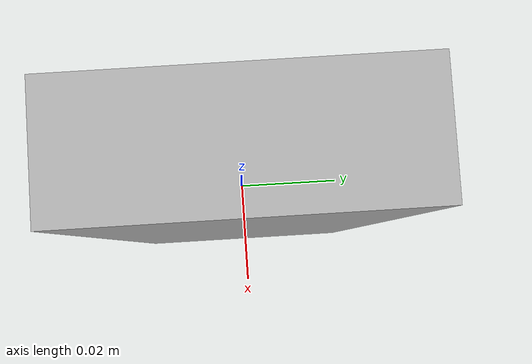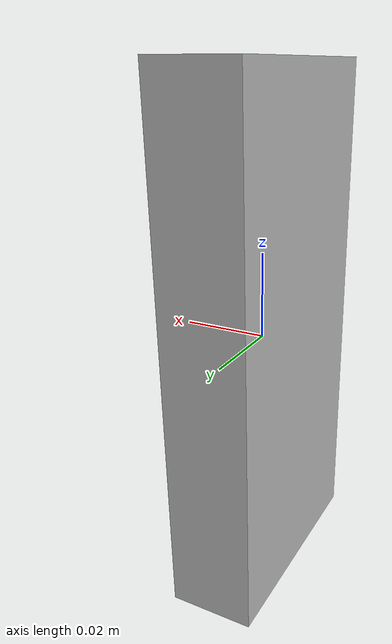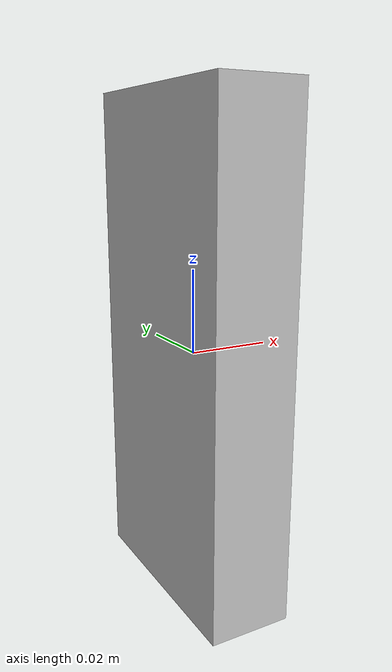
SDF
<?xml version="1.0"?>
<sdf version="1.4">
  <model name="linear_gauge_1">
    <pose>0 0 0 0 0 0</pose>
    <static>true</static>
    <link name="linear_gauge_1_link">
      <visual name="linear_gauge_1_visual">
        <pose>0 0 0 0 0 0</pose>
        <geometry>
          <mesh>
            <uri>model://linear_gauge_1/meshes/linear_gauge_1.dae</uri>
          </mesh>
        </geometry>
      </visual>
    </link>
  </model>
</sdf>
